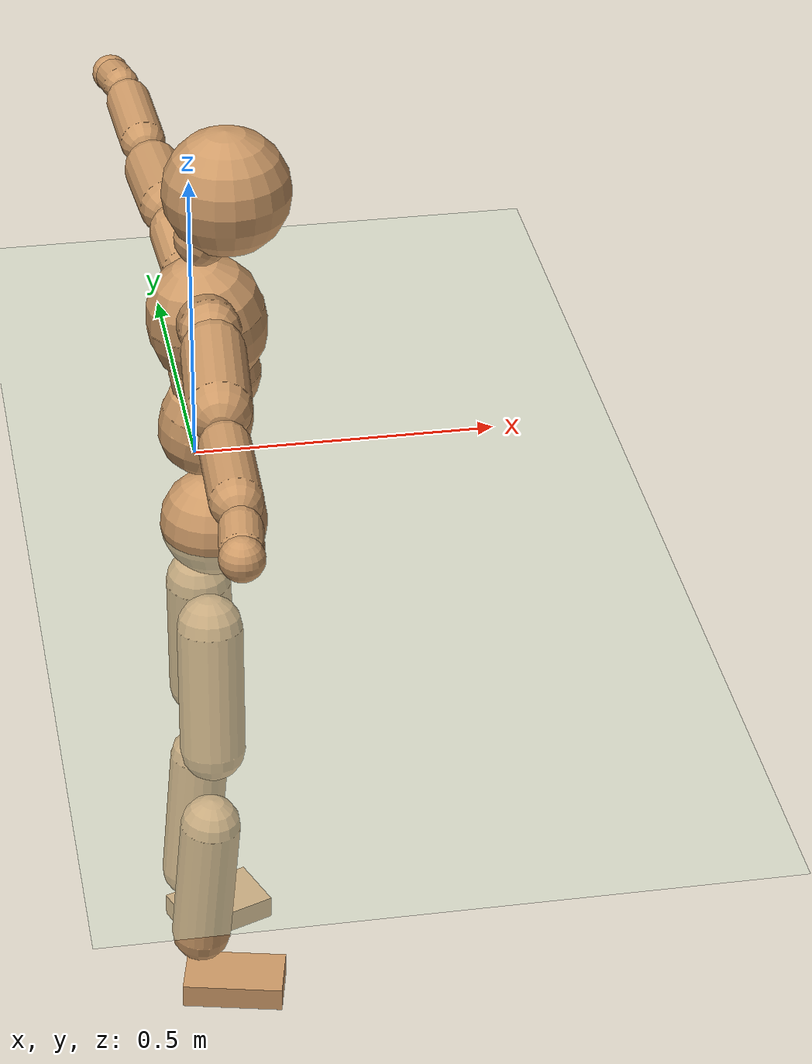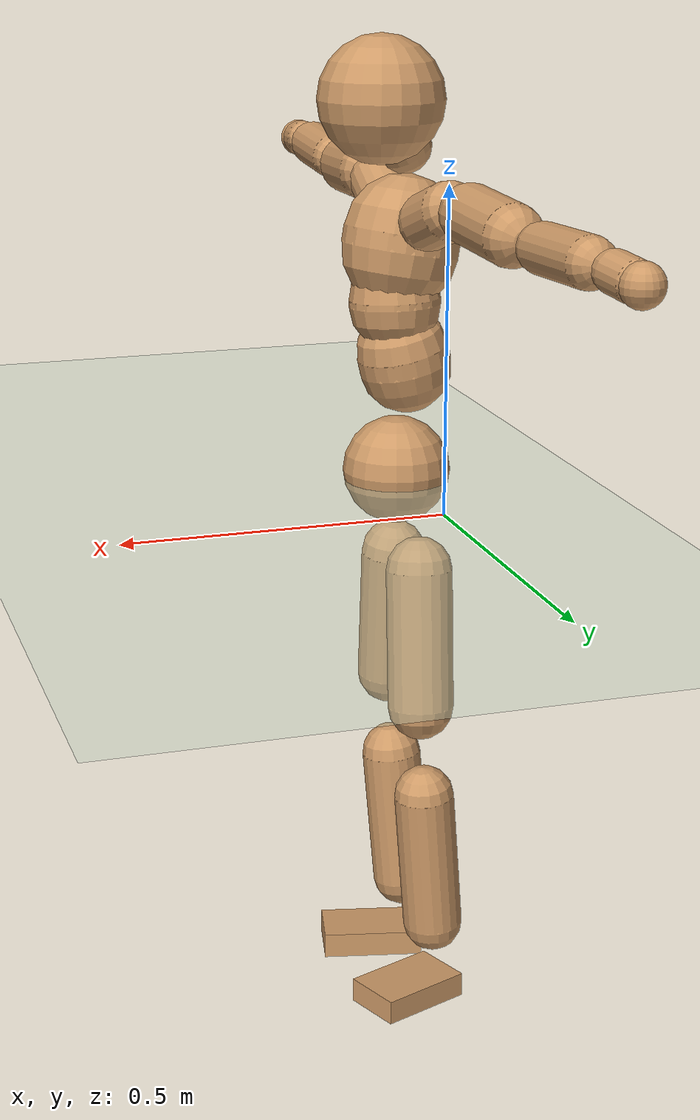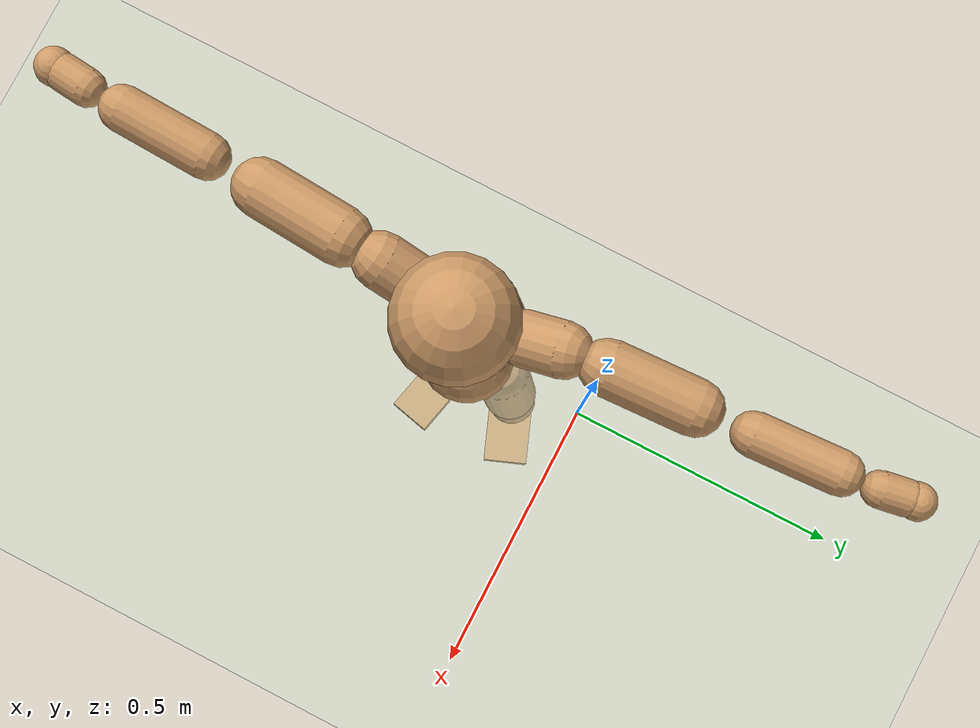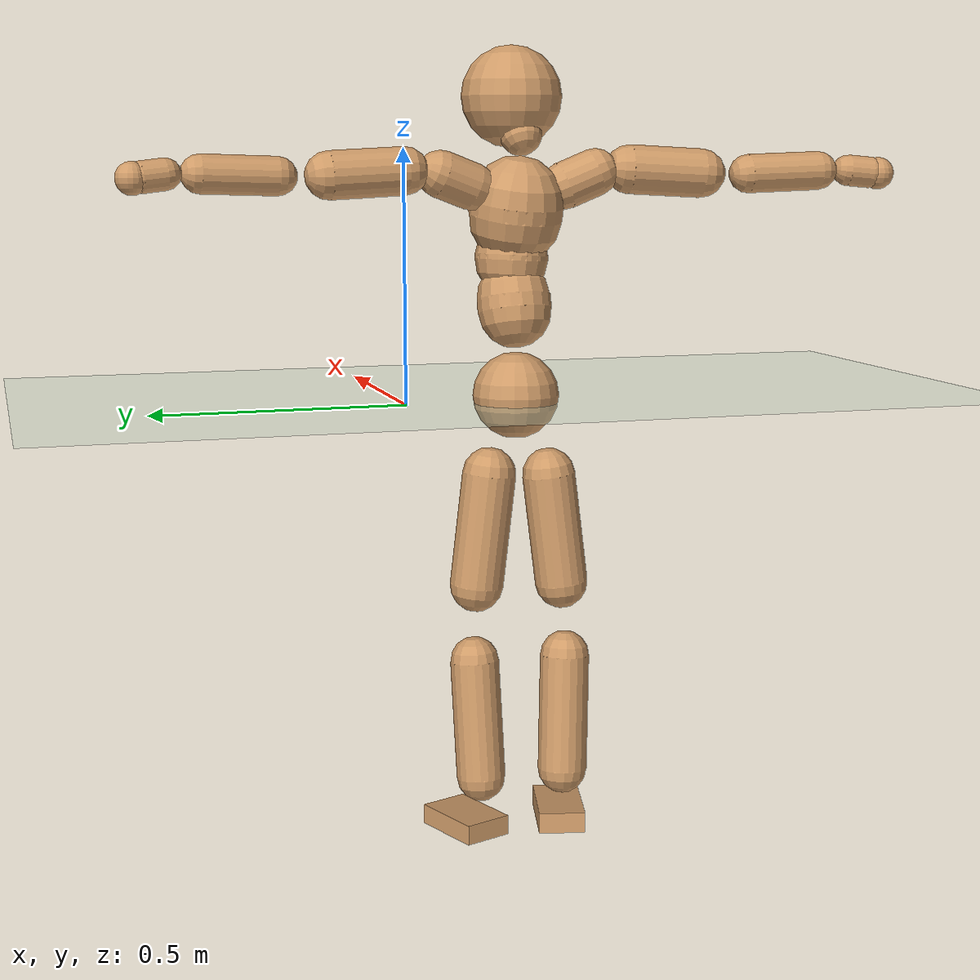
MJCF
<mujoco model="humanoid">
  <compiler coordinate="local" angle="radian"/>
  <default>
    <joint damping="0.0" armature="0.01" stiffness="0.0" limited="true"/>
    <geom conaffinity="1" condim="3" contype="7" margin="0.001" rgba="0.8 0.6 .4 1"/>
  </default>
  <asset>
    <texture type="skybox" builtin="gradient" rgb1=".4 .5 .6" rgb2="0 0 0" width="100" height="100"/>
    <texture builtin="flat" height="1278" mark="cross" markrgb="1 1 1" name="texgeom" random="0.01" rgb1="0.8 0.6 0.4" rgb2="0.8 0.6 0.4" type="cube" width="127"/>
    <texture builtin="checker" height="100" name="texplane" rgb1="0 0 0" rgb2="0.8 0.8 0.8" type="2d" width="100"/>
    <material name="MatPlane" reflectance="0.5" shininess="1" specular="1" texrepeat="60 60" texture="texplane"/>
    <material name="geom" texture="texgeom" texuniform="true"/>
  </asset>
  <worldbody>
    <light cutoff="100" diffuse="1 1 1" dir="-0 0 -1.3" directional="true" exponent="1" pos="0 0 1.3" specular=".1 .1 .1"/>
    <geom conaffinity="1" condim="3" name="floor" pos="0 0 0" rgba="0.8 0.9 0.8 1" size="100 100 .2" type="plane" material="MatPlane"/>
    <body name="Pelvis" pos="0.0013 -0.2254 0.013">
      <freejoint name="Pelvis"/>
      <geom type="sphere" contype="1" conaffinity="1" density="500" size="0.0864" pos="0.0000 0.0000 0.0000" name="Pelvis"/>
      <body name="L_Hip" pos="-0.0206 0.0525 -0.0782">
        <joint name="L_Hip_x" type="hinge" pos="0 0 0" axis="1 0 0" stiffness="800" damping="80" armature="0.02" range="-180.0000 180.0000"/>
        <joint name="L_Hip_y" type="hinge" pos="0 0 0" axis="0 1 0" stiffness="800" damping="80" armature="0.02" range="-180.0000 180.0000"/>
        <joint name="L_Hip_z" type="hinge" pos="0 0 0" axis="0 0 1" stiffness="800" damping="80" armature="0.02" range="-180.0000 180.0000"/>
        <geom type="capsule" contype="1" conaffinity="1" density="500" fromto="0.0012 0.0087 -0.0756 0.0048 0.0346 -0.3025" size="0.0536" name="L_Hip"/>
        <body name="L_Knee" pos="0.006 0.0433 -0.3781">
          <joint name="L_Knee_x" type="hinge" pos="0 0 0" axis="1 0 0" stiffness="800" damping="80" armature="0.02" range="-180.0000 180.0000"/>
          <joint name="L_Knee_y" type="hinge" pos="0 0 0" axis="0 1 0" stiffness="800" damping="80" armature="0.02" range="-180.0000 180.0000"/>
          <joint name="L_Knee_z" type="hinge" pos="0 0 0" axis="0 0 1" stiffness="800" damping="80" armature="0.02" range="-180.0000 180.0000"/>
          <geom type="capsule" contype="1" conaffinity="1" density="500" fromto="-0.0068 -0.0024 -0.0794 -0.0273 -0.0096 -0.3176" size="0.0491" name="L_Knee"/>
          <body name="L_Ankle" pos="-0.0341 -0.012 -0.3971">
            <joint name="L_Ankle_x" type="hinge" pos="0 0 0" axis="1 0 0" stiffness="800" damping="80" armature="0.02" range="-180.0000 180.0000"/>
            <joint name="L_Ankle_y" type="hinge" pos="0 0 0" axis="0 1 0" stiffness="800" damping="80" armature="0.02" range="-180.0000 180.0000"/>
            <joint name="L_Ankle_z" type="hinge" pos="0 0 0" axis="0 0 1" stiffness="800" damping="80" armature="0.02" range="-180.0000 180.0000"/>
            <geom type="box" contype="1" conaffinity="1" density="500" pos="0.0564 0.0219 -0.0282" size="0.078 0.0499 0.0201" quat="0.9830 0.0000 0.0000 0.1839" name="L_Ankle"/>
            <body name="L_Toe" pos="0.1127 0.0437 -0.0564">
              <joint name="L_Toe_x" type="hinge" pos="0 0 0" axis="1 0 0" stiffness="500" damping="50" armature="0.02" range="-180.0000 180.0000"/>
              <joint name="L_Toe_y" type="hinge" pos="0 0 0" axis="0 1 0" stiffness="500" damping="50" armature="0.02" range="-180.0000 180.0000"/>
              <joint name="L_Toe_z" type="hinge" pos="0 0 0" axis="0 0 1" stiffness="500" damping="50" armature="0.02" range="-180.0000 180.0000"/>
              <geom type="box" contype="1" conaffinity="1" density="500" pos="0.0000 0.0000 0.0296" size="0.001 0.0023 0.0011" quat="0.9821 0.0000 0.0000 0.1884" name="L_Toe"/>
            </body>
          </body>
        </body>
      </body>
      <body name="R_Hip" pos="-0.0173 -0.0549 -0.0866">
        <joint name="R_Hip_x" type="hinge" pos="0 0 0" axis="1 0 0" stiffness="800" damping="80" armature="0.02" range="-180.0000 180.0000"/>
        <joint name="R_Hip_y" type="hinge" pos="0 0 0" axis="0 1 0" stiffness="800" damping="80" armature="0.02" range="-180.0000 180.0000"/>
        <joint name="R_Hip_z" type="hinge" pos="0 0 0" axis="0 0 1" stiffness="800" damping="80" armature="0.02" range="-180.0000 180.0000"/>
        <geom type="capsule" contype="1" conaffinity="1" density="500" fromto="-0.0008 -0.0089 -0.0744 -0.0034 -0.0357 -0.2977" size="0.0534" name="R_Hip"/>
        <body name="R_Knee" pos="-0.0042 -0.0446 -0.3721">
          <joint name="R_Knee_x" type="hinge" pos="0 0 0" axis="1 0 0" stiffness="800" damping="80" armature="0.02" range="-180.0000 180.0000"/>
          <joint name="R_Knee_y" type="hinge" pos="0 0 0" axis="0 1 0" stiffness="800" damping="80" armature="0.02" range="-180.0000 180.0000"/>
          <joint name="R_Knee_z" type="hinge" pos="0 0 0" axis="0 0 1" stiffness="800" damping="80" armature="0.02" range="-180.0000 180.0000"/>
          <geom type="capsule" contype="1" conaffinity="1" density="500" fromto="-0.0061 0.0034 -0.0782 -0.0246 0.0136 -0.3130" size="0.05" name="R_Knee"/>
          <body name="R_Ankle" pos="-0.0307 0.017 -0.3912">
            <joint name="R_Ankle_x" type="hinge" pos="0 0 0" axis="1 0 0" stiffness="800" damping="80" armature="0.02" range="-180.0000 180.0000"/>
            <joint name="R_Ankle_y" type="hinge" pos="0 0 0" axis="0 1 0" stiffness="800" damping="80" armature="0.02" range="-180.0000 180.0000"/>
            <joint name="R_Ankle_z" type="hinge" pos="0 0 0" axis="0 0 1" stiffness="800" damping="80" armature="0.02" range="-180.0000 180.0000"/>
            <geom type="box" contype="1" conaffinity="1" density="500" pos="0.0603 -0.0137 -0.0306" size="0.0843 0.0473 0.0211" quat="0.9938 0.0000 0.0000 -0.1112" name="R_Ankle"/>
            <body name="R_Toe" pos="0.1205 -0.0273 -0.0612">
              <joint name="R_Toe_x" type="hinge" pos="0 0 0" axis="1 0 0" stiffness="500" damping="50" armature="0.02" range="-180.0000 180.0000"/>
              <joint name="R_Toe_y" type="hinge" pos="0 0 0" axis="0 1 0" stiffness="500" damping="50" armature="0.02" range="-180.0000 180.0000"/>
              <joint name="R_Toe_z" type="hinge" pos="0 0 0" axis="0 0 1" stiffness="500" damping="50" armature="0.02" range="-180.0000 180.0000"/>
              <geom type="box" contype="1" conaffinity="1" density="500" pos="0.0000 0.0000 0.0323" size="0.001 0.0023 0.0011" quat="0.9948 0.0000 0.0000 -0.1017" name="R_Toe"/>
            </body>
          </body>
        </body>
      </body>
      <body name="Torso" pos="-0.0244 0.0041 0.117">
        <joint name="Torso_x" type="hinge" pos="0 0 0" axis="1 0 0" stiffness="1000" damping="100" armature="0.02" range="-180.0000 180.0000"/>
        <joint name="Torso_y" type="hinge" pos="0 0 0" axis="0 1 0" stiffness="1000" damping="100" armature="0.02" range="-180.0000 180.0000"/>
        <joint name="Torso_z" type="hinge" pos="0 0 0" axis="0 0 1" stiffness="1000" damping="100" armature="0.02" range="-180.0000 180.0000"/>
        <geom type="capsule" contype="1" conaffinity="1" density="500" fromto="0.0185 0.0024 0.0784 0.0123 0.0016 0.0523" size="0.0734" name="Torso"/>
        <body name="Spine" pos="0.0308 0.0041 0.1307">
          <joint name="Spine_x" type="hinge" pos="0 0 0" axis="1 0 0" stiffness="1000" damping="100" armature="0.02" range="-180.0000 180.0000"/>
          <joint name="Spine_y" type="hinge" pos="0 0 0" axis="0 1 0" stiffness="1000" damping="100" armature="0.02" range="-180.0000 180.0000"/>
          <joint name="Spine_z" type="hinge" pos="0 0 0" axis="0 0 1" stiffness="1000" damping="100" armature="0.02" range="-180.0000 180.0000"/>
          <geom type="capsule" contype="1" conaffinity="1" density="500" fromto="0.0008 -0.0017 0.0312 0.0005 -0.0011 0.0208" size="0.0724" name="Spine"/>
          <body name="Chest" pos="0.0013 -0.0028 0.052">
            <joint name="Chest_x" type="hinge" pos="0 0 0" axis="1 0 0" stiffness="1000" damping="100" armature="0.02" range="-180.0000 180.0000"/>
            <joint name="Chest_y" type="hinge" pos="0 0 0" axis="0 1 0" stiffness="1000" damping="100" armature="0.02" range="-180.0000 180.0000"/>
            <joint name="Chest_z" type="hinge" pos="0 0 0" axis="0 0 1" stiffness="1000" damping="100" armature="0.02" range="-180.0000 180.0000"/>
            <geom type="capsule" contype="1" conaffinity="1" density="500" fromto="-0.0147 -0.0055 0.0813 -0.0098 -0.0037 0.0542" size="0.0928" name="Chest"/>
            <body name="Neck" pos="-0.0294 -0.0135 0.1964">
              <joint name="Neck_x" type="hinge" pos="0 0 0" axis="1 0 0" stiffness="500" damping="50" armature="0.02" range="-180.0000 180.0000"/>
              <joint name="Neck_y" type="hinge" pos="0 0 0" axis="0 1 0" stiffness="500" damping="50" armature="0.02" range="-180.0000 180.0000"/>
              <joint name="Neck_z" type="hinge" pos="0 0 0" axis="0 0 1" stiffness="500" damping="50" armature="0.02" range="-180.0000 180.0000"/>
              <geom type="capsule" contype="1" conaffinity="1" density="500" fromto="0.0102 0.0017 0.0182 0.0406 0.0067 0.0728" size="0.0426" name="Neck"/>
              <body name="Head" pos="0.0508 0.0084 0.091">
                <joint name="Head_x" type="hinge" pos="0 0 0" axis="1 0 0" stiffness="500" damping="50" armature="0.02" range="-180.0000 180.0000"/>
                <joint name="Head_y" type="hinge" pos="0 0 0" axis="0 1 0" stiffness="500" damping="50" armature="0.02" range="-180.0000 180.0000"/>
                <joint name="Head_z" type="hinge" pos="0 0 0" axis="0 0 1" stiffness="500" damping="50" armature="0.02" range="-180.0000 180.0000"/>
                <geom type="sphere" contype="1" conaffinity="1" density="500" size="0.0996" pos="0.0000 0.0000 0.0000" name="Head"/>
              </body>
            </body>
            <body name="L_Thorax" pos="-0.0215 0.0651 0.1046">
              <joint name="L_Thorax_x" type="hinge" pos="0 0 0" axis="1 0 0" stiffness="500" damping="50" armature="0.02" range="-180.0000 180.0000"/>
              <joint name="L_Thorax_y" type="hinge" pos="0 0 0" axis="0 1 0" stiffness="500" damping="50" armature="0.02" range="-180.0000 180.0000"/>
              <joint name="L_Thorax_z" type="hinge" pos="0 0 0" axis="0 0 1" stiffness="500" damping="50" armature="0.02" range="-180.0000 180.0000"/>
              <geom type="capsule" contype="1" conaffinity="1" density="500" fromto="-0.0031 0.0222 0.0084 -0.0124 0.0889 0.0334" size="0.0461" name="L_Thorax"/>
              <body name="L_Shoulder" pos="-0.0155 0.1111 0.0418">
                <joint name="L_Shoulder_x" type="hinge" pos="0 0 0" axis="1 0 0" stiffness="500" damping="50" armature="0.02" range="-720.0000 720.0000"/>
                <joint name="L_Shoulder_y" type="hinge" pos="0 0 0" axis="0 1 0" stiffness="500" damping="50" armature="0.02" range="-720.0000 720.0000"/>
                <joint name="L_Shoulder_z" type="hinge" pos="0 0 0" axis="0 0 1" stiffness="500" damping="50" armature="0.02" range="-720.0000 720.0000"/>
                <geom type="capsule" contype="1" conaffinity="1" density="500" fromto="-0.0026 0.0493 -0.0026 -0.0105 0.1972 -0.0104" size="0.0466" name="L_Shoulder"/>
                <body name="L_Elbow" pos="-0.0131 0.2465 -0.013">
                  <joint name="L_Elbow_x" type="hinge" pos="0 0 0" axis="1 0 0" stiffness="500" damping="50" armature="0.02" range="-720.0000 720.0000"/>
                  <joint name="L_Elbow_y" type="hinge" pos="0 0 0" axis="0 1 0" stiffness="500" damping="50" armature="0.02" range="-720.0000 720.0000"/>
                  <joint name="L_Elbow_z" type="hinge" pos="0 0 0" axis="0 0 1" stiffness="500" damping="50" armature="0.02" range="-720.0000 720.0000"/>
                  <geom type="capsule" contype="1" conaffinity="1" density="500" fromto="-0.0024 0.0482 0.0015 -0.0097 0.1927 0.0061" size="0.037" name="L_Elbow"/>
                  <body name="L_Wrist" pos="-0.0122 0.2409 0.0076">
                    <joint name="L_Wrist_x" type="hinge" pos="0 0 0" axis="1 0 0" stiffness="300" damping="30" armature="0.02" range="-180.0000 180.0000"/>
                    <joint name="L_Wrist_y" type="hinge" pos="0 0 0" axis="0 1 0" stiffness="300" damping="30" armature="0.02" range="-180.0000 180.0000"/>
                    <joint name="L_Wrist_z" type="hinge" pos="0 0 0" axis="0 0 1" stiffness="300" damping="30" armature="0.02" range="-180.0000 180.0000"/>
                    <geom type="capsule" contype="1" conaffinity="1" density="500" fromto="-0.0027 0.0152 -0.0018 -0.0109 0.0607 -0.0072" size="0.03" name="L_Wrist"/>
                    <body name="L_Hand" pos="-0.0136 0.0758 -0.009">
                      <joint name="L_Hand_x" type="hinge" pos="0 0 0" axis="1 0 0" stiffness="300" damping="30" armature="0.02" range="-180.0000 180.0000"/>
                      <joint name="L_Hand_y" type="hinge" pos="0 0 0" axis="0 1 0" stiffness="300" damping="30" armature="0.02" range="-180.0000 180.0000"/>
                      <joint name="L_Hand_z" type="hinge" pos="0 0 0" axis="0 0 1" stiffness="300" damping="30" armature="0.02" range="-180.0000 180.0000"/>
                      <geom type="sphere" contype="1" conaffinity="1" density="500" size="0.0312" pos="0.0000 0.0000 0.0000" name="L_Hand"/>
                    </body>
                  </body>
                </body>
              </body>
            </body>
            <body name="R_Thorax" pos="-0.0227 -0.0792 0.1058">
              <joint name="R_Thorax_x" type="hinge" pos="0 0 0" axis="1 0 0" stiffness="500" damping="50" armature="0.02" range="-180.0000 180.0000"/>
              <joint name="R_Thorax_y" type="hinge" pos="0 0 0" axis="0 1 0" stiffness="500" damping="50" armature="0.02" range="-180.0000 180.0000"/>
              <joint name="R_Thorax_z" type="hinge" pos="0 0 0" axis="0 0 1" stiffness="500" damping="50" armature="0.02" range="-180.0000 180.0000"/>
              <geom type="capsule" contype="1" conaffinity="1" density="500" fromto="-0.0011 -0.0208 0.0086 -0.0044 -0.0834 0.0345" size="0.0472" name="R_Thorax"/>
              <body name="R_Shoulder" pos="-0.0054 -0.1042 0.0431">
                <joint name="R_Shoulder_x" type="hinge" pos="0 0 0" axis="1 0 0" stiffness="500" damping="50" armature="0.02" range="-720.0000 720.0000"/>
                <joint name="R_Shoulder_y" type="hinge" pos="0 0 0" axis="0 1 0" stiffness="500" damping="50" armature="0.02" range="-720.0000 720.0000"/>
                <joint name="R_Shoulder_z" type="hinge" pos="0 0 0" axis="0 0 1" stiffness="500" damping="50" armature="0.02" range="-720.0000 720.0000"/>
                <geom type="capsule" contype="1" conaffinity="1" density="500" fromto="-0.0038 -0.0496 -0.0027 -0.0152 -0.1985 -0.0109" size="0.0487" name="R_Shoulder"/>
                <body name="R_Elbow" pos="-0.019 -0.2482 -0.0137">
                  <joint name="R_Elbow_x" type="hinge" pos="0 0 0" axis="1 0 0" stiffness="500" damping="50" armature="0.02" range="-720.0000 720.0000"/>
                  <joint name="R_Elbow_y" type="hinge" pos="0 0 0" axis="0 1 0" stiffness="500" damping="50" armature="0.02" range="-720.0000 720.0000"/>
                  <joint name="R_Elbow_z" type="hinge" pos="0 0 0" axis="0 0 1" stiffness="500" damping="50" armature="0.02" range="-720.0000 720.0000"/>
                  <geom type="capsule" contype="1" conaffinity="1" density="500" fromto="-0.0017 -0.0504 0.0019 -0.0069 -0.2016 0.0076" size="0.0388" name="R_Elbow"/>
                  <body name="R_Wrist" pos="-0.0087 -0.252 0.0095">
                    <joint name="R_Wrist_x" type="hinge" pos="0 0 0" axis="1 0 0" stiffness="300" damping="30" armature="0.02" range="-180.0000 180.0000"/>
                    <joint name="R_Wrist_y" type="hinge" pos="0 0 0" axis="0 1 0" stiffness="300" damping="30" armature="0.02" range="-180.0000 180.0000"/>
                    <joint name="R_Wrist_z" type="hinge" pos="0 0 0" axis="0 0 1" stiffness="300" damping="30" armature="0.02" range="-180.0000 180.0000"/>
                    <geom type="capsule" contype="1" conaffinity="1" density="500" fromto="-0.0018 -0.0160 -0.0015 -0.0072 -0.0640 -0.0059" size="0.0315" name="R_Wrist"/>
                    <body name="R_Hand" pos="-0.009 -0.08 -0.0074">
                      <joint name="R_Hand_x" type="hinge" pos="0 0 0" axis="1 0 0" stiffness="300" damping="30" armature="0.02" range="-180.0000 180.0000"/>
                      <joint name="R_Hand_y" type="hinge" pos="0 0 0" axis="0 1 0" stiffness="300" damping="30" armature="0.02" range="-180.0000 180.0000"/>
                      <joint name="R_Hand_z" type="hinge" pos="0 0 0" axis="0 0 1" stiffness="300" damping="30" armature="0.02" range="-180.0000 180.0000"/>
                      <geom type="sphere" contype="1" conaffinity="1" density="500" size="0.0326" pos="0.0000 0.0000 0.0000" name="R_Hand"/>
                    </body>
                  </body>
                </body>
              </body>
            </body>
          </body>
        </body>
      </body>
    </body>
  </worldbody>
  <actuator>
    <motor name="L_Hip_x" joint="L_Hip_x" gear="500"/>
    <motor name="L_Hip_y" joint="L_Hip_y" gear="500"/>
    <motor name="L_Hip_z" joint="L_Hip_z" gear="500"/>
    <motor name="L_Knee_x" joint="L_Knee_x" gear="500"/>
    <motor name="L_Knee_y" joint="L_Knee_y" gear="500"/>
    <motor name="L_Knee_z" joint="L_Knee_z" gear="500"/>
    <motor name="L_Ankle_x" joint="L_Ankle_x" gear="500"/>
    <motor name="L_Ankle_y" joint="L_Ankle_y" gear="500"/>
    <motor name="L_Ankle_z" joint="L_Ankle_z" gear="500"/>
    <motor name="L_Toe_x" joint="L_Toe_x" gear="500"/>
    <motor name="L_Toe_y" joint="L_Toe_y" gear="500"/>
    <motor name="L_Toe_z" joint="L_Toe_z" gear="500"/>
    <motor name="R_Hip_x" joint="R_Hip_x" gear="500"/>
    <motor name="R_Hip_y" joint="R_Hip_y" gear="500"/>
    <motor name="R_Hip_z" joint="R_Hip_z" gear="500"/>
    <motor name="R_Knee_x" joint="R_Knee_x" gear="500"/>
    <motor name="R_Knee_y" joint="R_Knee_y" gear="500"/>
    <motor name="R_Knee_z" joint="R_Knee_z" gear="500"/>
    <motor name="R_Ankle_x" joint="R_Ankle_x" gear="500"/>
    <motor name="R_Ankle_y" joint="R_Ankle_y" gear="500"/>
    <motor name="R_Ankle_z" joint="R_Ankle_z" gear="500"/>
    <motor name="R_Toe_x" joint="R_Toe_x" gear="500"/>
    <motor name="R_Toe_y" joint="R_Toe_y" gear="500"/>
    <motor name="R_Toe_z" joint="R_Toe_z" gear="500"/>
    <motor name="Torso_x" joint="Torso_x" gear="500"/>
    <motor name="Torso_y" joint="Torso_y" gear="500"/>
    <motor name="Torso_z" joint="Torso_z" gear="500"/>
    <motor name="Spine_x" joint="Spine_x" gear="500"/>
    <motor name="Spine_y" joint="Spine_y" gear="500"/>
    <motor name="Spine_z" joint="Spine_z" gear="500"/>
    <motor name="Chest_x" joint="Chest_x" gear="500"/>
    <motor name="Chest_y" joint="Chest_y" gear="500"/>
    <motor name="Chest_z" joint="Chest_z" gear="500"/>
    <motor name="Neck_x" joint="Neck_x" gear="500"/>
    <motor name="Neck_y" joint="Neck_y" gear="500"/>
    <motor name="Neck_z" joint="Neck_z" gear="500"/>
    <motor name="Head_x" joint="Head_x" gear="500"/>
    <motor name="Head_y" joint="Head_y" gear="500"/>
    <motor name="Head_z" joint="Head_z" gear="500"/>
    <motor name="L_Thorax_x" joint="L_Thorax_x" gear="500"/>
    <motor name="L_Thorax_y" joint="L_Thorax_y" gear="500"/>
    <motor name="L_Thorax_z" joint="L_Thorax_z" gear="500"/>
    <motor name="L_Shoulder_x" joint="L_Shoulder_x" gear="500"/>
    <motor name="L_Shoulder_y" joint="L_Shoulder_y" gear="500"/>
    <motor name="L_Shoulder_z" joint="L_Shoulder_z" gear="500"/>
    <motor name="L_Elbow_x" joint="L_Elbow_x" gear="500"/>
    <motor name="L_Elbow_y" joint="L_Elbow_y" gear="500"/>
    <motor name="L_Elbow_z" joint="L_Elbow_z" gear="500"/>
    <motor name="L_Wrist_x" joint="L_Wrist_x" gear="500"/>
    <motor name="L_Wrist_y" joint="L_Wrist_y" gear="500"/>
    <motor name="L_Wrist_z" joint="L_Wrist_z" gear="500"/>
    <motor name="L_Hand_x" joint="L_Hand_x" gear="500"/>
    <motor name="L_Hand_y" joint="L_Hand_y" gear="500"/>
    <motor name="L_Hand_z" joint="L_Hand_z" gear="500"/>
    <motor name="R_Thorax_x" joint="R_Thorax_x" gear="500"/>
    <motor name="R_Thorax_y" joint="R_Thorax_y" gear="500"/>
    <motor name="R_Thorax_z" joint="R_Thorax_z" gear="500"/>
    <motor name="R_Shoulder_x" joint="R_Shoulder_x" gear="500"/>
    <motor name="R_Shoulder_y" joint="R_Shoulder_y" gear="500"/>
    <motor name="R_Shoulder_z" joint="R_Shoulder_z" gear="500"/>
    <motor name="R_Elbow_x" joint="R_Elbow_x" gear="500"/>
    <motor name="R_Elbow_y" joint="R_Elbow_y" gear="500"/>
    <motor name="R_Elbow_z" joint="R_Elbow_z" gear="500"/>
    <motor name="R_Wrist_x" joint="R_Wrist_x" gear="500"/>
    <motor name="R_Wrist_y" joint="R_Wrist_y" gear="500"/>
    <motor name="R_Wrist_z" joint="R_Wrist_z" gear="500"/>
    <motor name="R_Hand_x" joint="R_Hand_x" gear="500"/>
    <motor name="R_Hand_y" joint="R_Hand_y" gear="500"/>
    <motor name="R_Hand_z" joint="R_Hand_z" gear="500"/>
  </actuator>
  <contact>
    <exclude body1="Torso" body2="Chest"/>
    <exclude body1="Head" body2="Chest"/>
    <exclude body1="R_Knee" body2="R_Toe"/>
    <exclude body1="R_Knee" body2="L_Ankle"/>
    <exclude body1="R_Knee" body2="L_Toe"/>
    <exclude body1="L_Knee" body2="L_Toe"/>
    <exclude body1="L_Knee" body2="R_Ankle"/>
    <exclude body1="L_Knee" body2="R_Toe"/>
    <exclude body1="L_Shoulder" body2="Chest"/>
    <exclude body1="R_Shoulder" body2="Chest"/>
  </contact>
  <sensor/>
  <size njmax="700" nconmax="700"/>
</mujoco>
